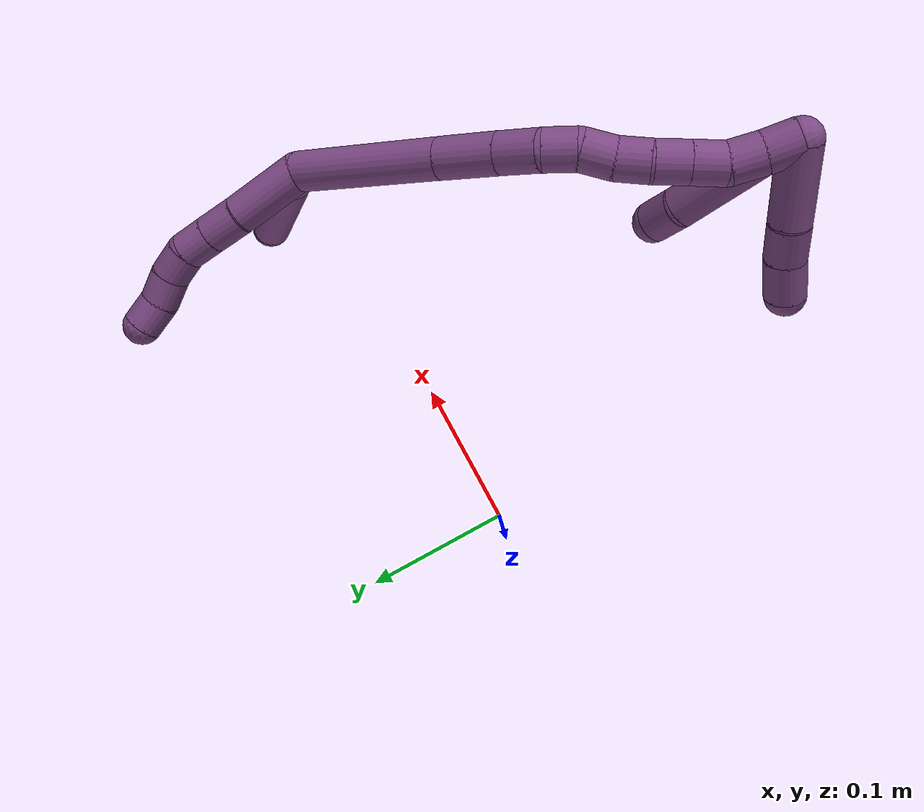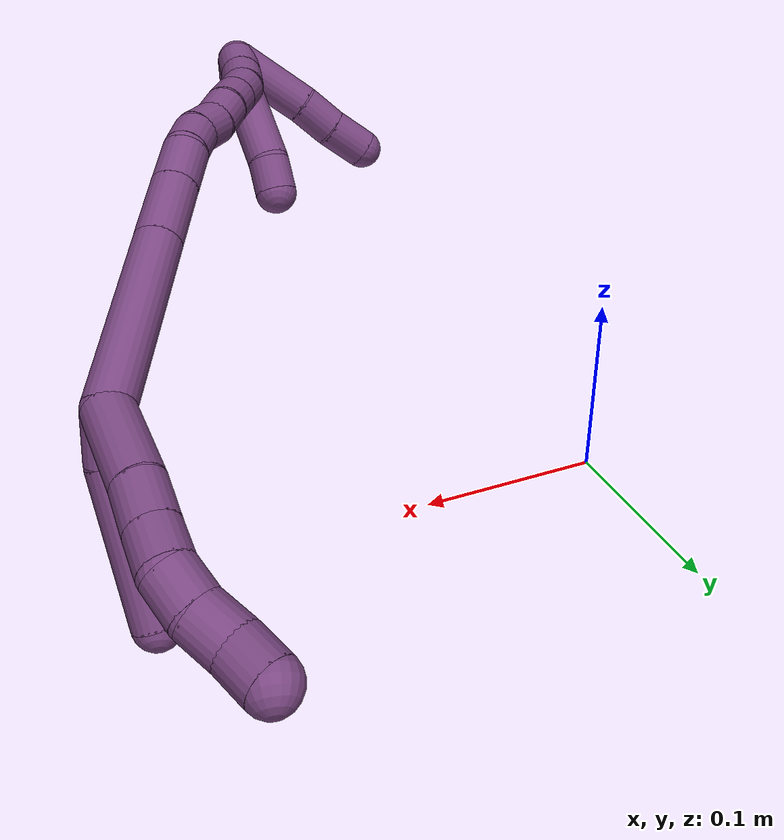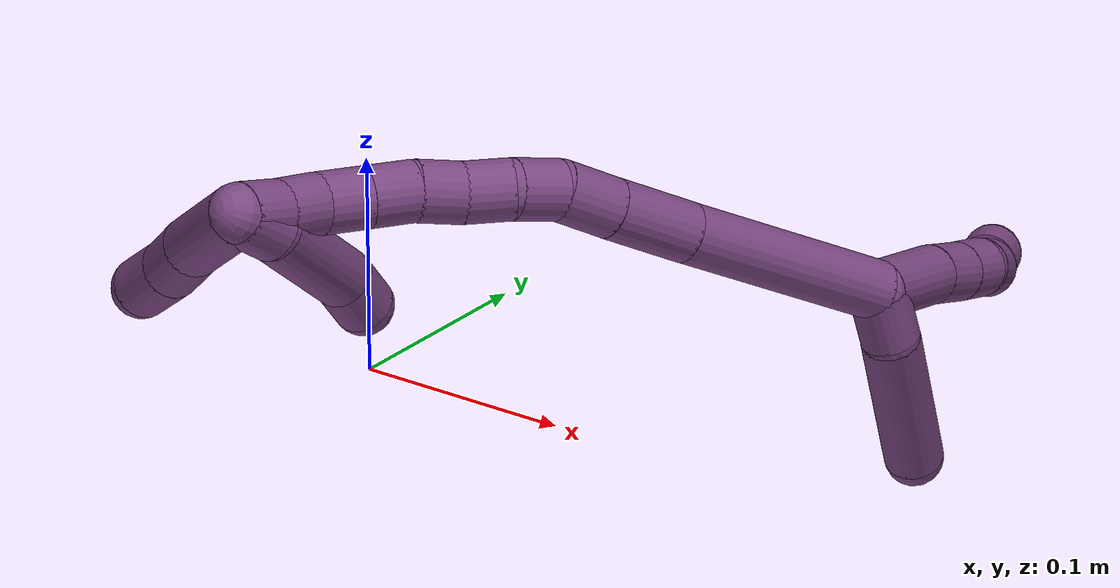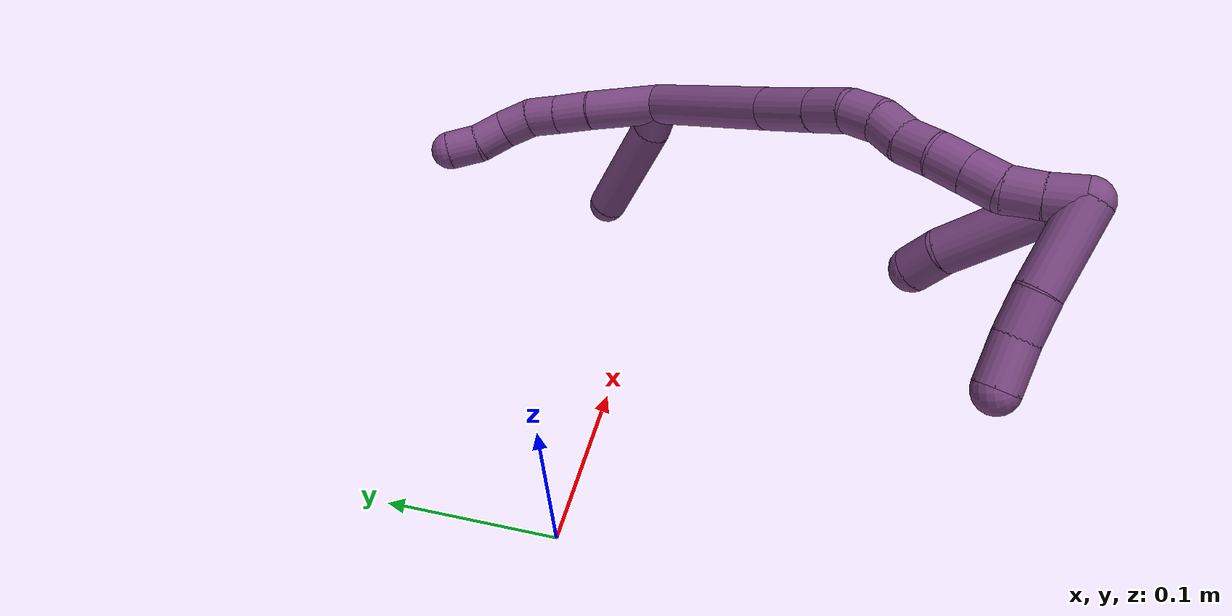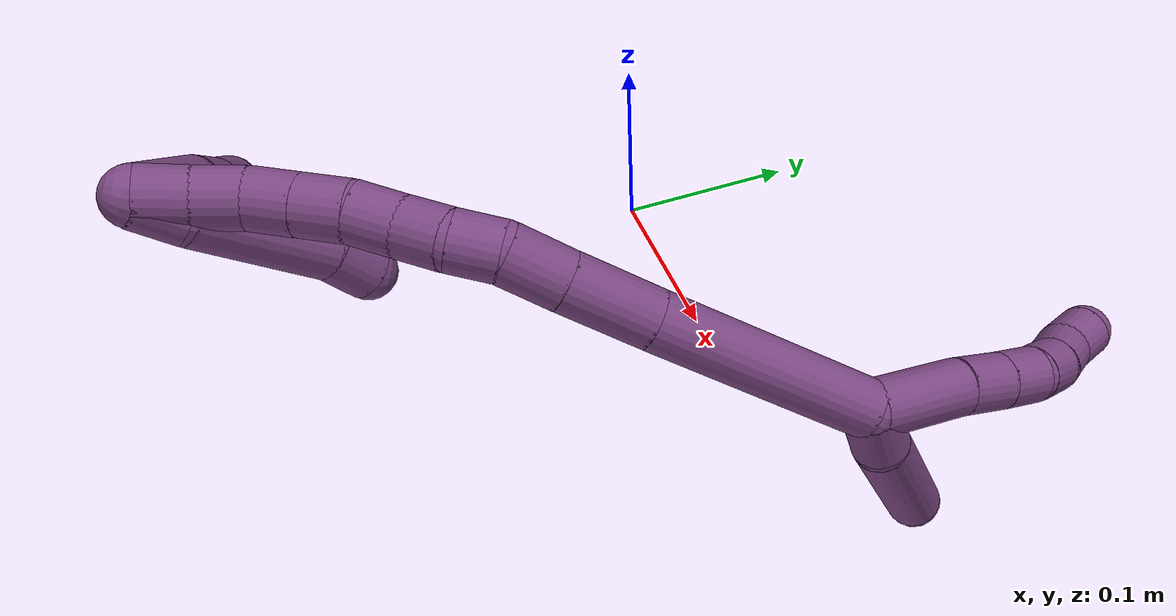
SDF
<sdf version="1.7">
 <world name="default">
  <model name="20">
   <static>0</static>
   <link name="20">
    <collision name="collision-cylinder-e_1_2_8">
     <pose>0.006618 -0.00494 0.02174 0.223454 0.288561 0.032599</pose>
     <geometry><cylinder><radius>0.0125</radius><length>0.046512</length></cylinder></geometry>
     <surface>
      <friction><ode><mu>1.16</mu><mu2>1.16</mu2><slip1>0</slip1><slip2>0</slip2></ode></friction>
      <contact><ode><kp>1e+06</kp><kd>1</kd><max_vel>0</max_vel><min_depth>0.001</min_depth></ode></contact>
     </surface>
    </collision>
    <visual name="visual-cylinder-e_1_2_8">
     <pose>0.006618 -0.00494 0.02174 0.223454 0.288561 0.032599</pose>
     <geometry><cylinder><radius>0.0125</radius><length>0.046512</length></cylinder></geometry>
     <material><ambient>0.478431 0.278431 0.509804 1</ambient></material>
    </visual>
    <collision name="collision-cylinder-e_2_8_9">
     <pose>0.015616 -0.012 0.054682 0.186952 0.205811 0.019362</pose>
     <geometry><cylinder><radius>0.0125</radius><length>0.023293</length></cylinder></geometry>
     <surface>
      <friction><ode><mu>1.16</mu><mu2>1.16</mu2><slip1>0</slip1><slip2>0</slip2></ode></friction>
      <contact><ode><kp>1e+06</kp><kd>1</kd><max_vel>0</max_vel><min_depth>0.001</min_depth></ode></contact>
     </surface>
    </collision>
    <visual name="visual-cylinder-e_2_8_9">
     <pose>0.015616 -0.012 0.054682 0.186952 0.205811 0.019362</pose>
     <geometry><cylinder><radius>0.0125</radius><length>0.023293</length></cylinder></geometry>
     <material><ambient>0.478431 0.278431 0.509804 1</ambient></material>
    </visual>
    <collision name="collision-cylinder-e_3_9_10">
     <pose>0.020416 -0.016051 0.075468 0.198965 0.242624 0.024335</pose>
     <geometry><cylinder><radius>0.0125</radius><length>0.020144</length></cylinder></geometry>
     <surface>
      <friction><ode><mu>1.16</mu><mu2>1.16</mu2><slip1>0</slip1><slip2>0</slip2></ode></friction>
      <contact><ode><kp>1e+06</kp><kd>1</kd><max_vel>0</max_vel><min_depth>0.001</min_depth></ode></contact>
     </surface>
    </collision>
    <visual name="visual-cylinder-e_3_9_10">
     <pose>0.020416 -0.016051 0.075468 0.198965 0.242624 0.024335</pose>
     <geometry><cylinder><radius>0.0125</radius><length>0.020144</length></cylinder></geometry>
     <material><ambient>0.478431 0.278431 0.509804 1</ambient></material>
    </visual>
    <collision name="collision-cylinder-e_4_10_11">
     <pose>0.024064 -0.022791 0.093757 0.504602 0.122862 0.03171</pose>
     <geometry><cylinder><radius>0.0125</radius><length>0.020039</length></cylinder></geometry>
     <surface>
      <friction><ode><mu>1.16</mu><mu2>1.16</mu2><slip1>0</slip1><slip2>0</slip2></ode></friction>
      <contact><ode><kp>1e+06</kp><kd>1</kd><max_vel>0</max_vel><min_depth>0.001</min_depth></ode></contact>
     </surface>
    </collision>
    <visual name="visual-cylinder-e_4_10_11">
     <pose>0.024064 -0.022791 0.093757 0.504602 0.122862 0.03171</pose>
     <geometry><cylinder><radius>0.0125</radius><length>0.020039</length></cylinder></geometry>
     <material><ambient>0.478431 0.278431 0.509804 1</ambient></material>
    </visual>
    <collision name="collision-cylinder-e_5_11_12">
     <pose>0.027016 -0.034128 0.109843 0.72424 0.173205 0.065755</pose>
     <geometry><cylinder><radius>0.0125</radius><length>0.020008</length></cylinder></geometry>
     <surface>
      <friction><ode><mu>1.16</mu><mu2>1.16</mu2><slip1>0</slip1><slip2>0</slip2></ode></friction>
      <contact><ode><kp>1e+06</kp><kd>1</kd><max_vel>0</max_vel><min_depth>0.001</min_depth></ode></contact>
     </surface>
    </collision>
    <visual name="visual-cylinder-e_5_11_12">
     <pose>0.027016 -0.034128 0.109843 0.72424 0.173205 0.065755</pose>
     <geometry><cylinder><radius>0.0125</radius><length>0.020008</length></cylinder></geometry>
     <material><ambient>0.478431 0.278431 0.509804 1</ambient></material>
    </visual>
    <collision name="collision-cylinder-e_6_12_6">
     <pose>0.032245 -0.045511 0.125236 0.544658 0.358095 0.101001</pose>
     <geometry><cylinder><radius>0.0125</radius><length>0.020004</length></cylinder></geometry>
     <surface>
      <friction><ode><mu>1.16</mu><mu2>1.16</mu2><slip1>0</slip1><slip2>0</slip2></ode></friction>
      <contact><ode><kp>1e+06</kp><kd>1</kd><max_vel>0</max_vel><min_depth>0.001</min_depth></ode></contact>
     </surface>
    </collision>
    <visual name="visual-cylinder-e_6_12_6">
     <pose>0.032245 -0.045511 0.125236 0.544658 0.358095 0.101001</pose>
     <geometry><cylinder><radius>0.0125</radius><length>0.020004</length></cylinder></geometry>
     <material><ambient>0.478431 0.278431 0.509804 1</ambient></material>
    </visual>
    <collision name="collision-cylinder-e_1_2_13">
     <pose>-0.008545 -0.002036 0.00829 0.240806 -0.785909 -0.100219</pose>
     <geometry><cylinder><radius>0.0125</radius><length>0.024157</length></cylinder></geometry>
     <surface>
      <friction><ode><mu>1.16</mu><mu2>1.16</mu2><slip1>0</slip1><slip2>0</slip2></ode></friction>
      <contact><ode><kp>1e+06</kp><kd>1</kd><max_vel>0</max_vel><min_depth>0.001</min_depth></ode></contact>
     </surface>
    </collision>
    <visual name="visual-cylinder-e_1_2_13">
     <pose>-0.008545 -0.002036 0.00829 0.240806 -0.785909 -0.100219</pose>
     <geometry><cylinder><radius>0.0125</radius><length>0.024157</length></cylinder></geometry>
     <material><ambient>0.478431 0.278431 0.509804 1</ambient></material>
    </visual>
    <collision name="collision-cylinder-e_2_13_5">
     <pose>-0.038344 -0.017205 0.045108 0.431439 -0.594957 -0.134158</pose>
     <geometry><cylinder><radius>0.0125</radius><length>0.075843</length></cylinder></geometry>
     <surface>
      <friction><ode><mu>1.16</mu><mu2>1.16</mu2><slip1>0</slip1><slip2>0</slip2></ode></friction>
      <contact><ode><kp>1e+06</kp><kd>1</kd><max_vel>0</max_vel><min_depth>0.001</min_depth></ode></contact>
     </surface>
    </collision>
    <visual name="visual-cylinder-e_2_13_5">
     <pose>-0.038344 -0.017205 0.045108 0.431439 -0.594957 -0.134158</pose>
     <geometry><cylinder><radius>0.0125</radius><length>0.075843</length></cylinder></geometry>
     <material><ambient>0.478431 0.278431 0.509804 1</ambient></material>
    </visual>
    <collision name="collision-cylinder-e_1_2_14">
     <pose>0.003759 -0.011884 -0.046893 2.89339 0.07754 0.602969</pose>
     <geometry><cylinder><radius>0.0125</radius><length>0.097042</length></cylinder></geometry>
     <surface>
      <friction><ode><mu>1.16</mu><mu2>1.16</mu2><slip1>0</slip1><slip2>0</slip2></ode></friction>
      <contact><ode><kp>1e+06</kp><kd>1</kd><max_vel>0</max_vel><min_depth>0.001</min_depth></ode></contact>
     </surface>
    </collision>
    <visual name="visual-cylinder-e_1_2_14">
     <pose>0.003759 -0.011884 -0.046893 2.89339 0.07754 0.602969</pose>
     <geometry><cylinder><radius>0.0125</radius><length>0.097042</length></cylinder></geometry>
     <material><ambient>0.478431 0.278431 0.509804 1</ambient></material>
    </visual>
    <collision name="collision-cylinder-e_2_14_15">
     <pose>0.009253 -0.028392 -0.111833 2.89076 0.092912 0.706535</pose>
     <geometry><cylinder><radius>0.0125</radius><length>0.037422</length></cylinder></geometry>
     <surface>
      <friction><ode><mu>1.16</mu><mu2>1.16</mu2><slip1>0</slip1><slip2>0</slip2></ode></friction>
      <contact><ode><kp>1e+06</kp><kd>1</kd><max_vel>0</max_vel><min_depth>0.001</min_depth></ode></contact>
     </surface>
    </collision>
    <visual name="visual-cylinder-e_2_14_15">
     <pose>0.009253 -0.028392 -0.111833 2.89076 0.092912 0.706535</pose>
     <geometry><cylinder><radius>0.0125</radius><length>0.037422</length></cylinder></geometry>
     <material><ambient>0.478431 0.278431 0.509804 1</ambient></material>
    </visual>
    <collision name="collision-cylinder-e_3_15_16">
     <pose>0.012438 -0.036253 -0.142067 2.88193 0.114396 0.826592</pose>
     <geometry><cylinder><radius>0.0125</radius><length>0.025386</length></cylinder></geometry>
     <surface>
      <friction><ode><mu>1.16</mu><mu2>1.16</mu2><slip1>0</slip1><slip2>0</slip2></ode></friction>
      <contact><ode><kp>1e+06</kp><kd>1</kd><max_vel>0</max_vel><min_depth>0.001</min_depth></ode></contact>
     </surface>
    </collision>
    <visual name="visual-cylinder-e_3_15_16">
     <pose>0.012438 -0.036253 -0.142067 2.88193 0.114396 0.826592</pose>
     <geometry><cylinder><radius>0.0125</radius><length>0.025386</length></cylinder></geometry>
     <material><ambient>0.478431 0.278431 0.509804 1</ambient></material>
    </visual>
    <collision name="collision-cylinder-e_4_16_17">
     <pose>0.012282 -0.042981 -0.163561 2.78281 -0.160063 -0.832828</pose>
     <geometry><cylinder><radius>0.0125</radius><length>0.020137</length></cylinder></geometry>
     <surface>
      <friction><ode><mu>1.16</mu><mu2>1.16</mu2><slip1>0</slip1><slip2>0</slip2></ode></friction>
      <contact><ode><kp>1e+06</kp><kd>1</kd><max_vel>0</max_vel><min_depth>0.001</min_depth></ode></contact>
     </surface>
    </collision>
    <visual name="visual-cylinder-e_4_16_17">
     <pose>0.012282 -0.042981 -0.163561 2.78281 -0.160063 -0.832828</pose>
     <geometry><cylinder><radius>0.0125</radius><length>0.020137</length></cylinder></geometry>
     <material><ambient>0.478431 0.278431 0.509804 1</ambient></material>
    </visual>
    <collision name="collision-cylinder-e_5_17_18">
     <pose>0.008484 -0.052507 -0.18054 2.475 -0.221028 -0.620343</pose>
     <geometry><cylinder><radius>0.0125</radius><length>0.02001</length></cylinder></geometry>
     <surface>
      <friction><ode><mu>1.16</mu><mu2>1.16</mu2><slip1>0</slip1><slip2>0</slip2></ode></friction>
      <contact><ode><kp>1e+06</kp><kd>1</kd><max_vel>0</max_vel><min_depth>0.001</min_depth></ode></contact>
     </surface>
    </collision>
    <visual name="visual-cylinder-e_5_17_18">
     <pose>0.008484 -0.052507 -0.18054 2.475 -0.221028 -0.620343</pose>
     <geometry><cylinder><radius>0.0125</radius><length>0.02001</length></cylinder></geometry>
     <material><ambient>0.478431 0.278431 0.509804 1</ambient></material>
    </visual>
    <collision name="collision-cylinder-e_6_18_19">
     <pose>0.005039 -0.062924 -0.197114 2.68423 -0.125458 -0.527172</pose>
     <geometry><cylinder><radius>0.0125</radius><length>0.020001</length></cylinder></geometry>
     <surface>
      <friction><ode><mu>1.16</mu><mu2>1.16</mu2><slip1>0</slip1><slip2>0</slip2></ode></friction>
      <contact><ode><kp>1e+06</kp><kd>1</kd><max_vel>0</max_vel><min_depth>0.001</min_depth></ode></contact>
     </surface>
    </collision>
    <visual name="visual-cylinder-e_6_18_19">
     <pose>0.005039 -0.062924 -0.197114 2.68423 -0.125458 -0.527172</pose>
     <geometry><cylinder><radius>0.0125</radius><length>0.020001</length></cylinder></geometry>
     <material><ambient>0.478431 0.278431 0.509804 1</ambient></material>
    </visual>
    <collision name="collision-cylinder-e_7_19_20">
     <pose>0.000909 -0.071404 -0.214672 2.69936 -0.291994 -1.15856</pose>
     <geometry><cylinder><radius>0.0125</radius><length>0.020001</length></cylinder></geometry>
     <surface>
      <friction><ode><mu>1.16</mu><mu2>1.16</mu2><slip1>0</slip1><slip2>0</slip2></ode></friction>
      <contact><ode><kp>1e+06</kp><kd>1</kd><max_vel>0</max_vel><min_depth>0.001</min_depth></ode></contact>
     </surface>
    </collision>
    <visual name="visual-cylinder-e_7_19_20">
     <pose>0.000909 -0.071404 -0.214672 2.69936 -0.291994 -1.15856</pose>
     <geometry><cylinder><radius>0.0125</radius><length>0.020001</length></cylinder></geometry>
     <material><ambient>0.478431 0.278431 0.509804 1</ambient></material>
    </visual>
    <collision name="collision-cylinder-e_8_20_21">
     <pose>-0.004828 -0.079648 -0.231968 2.69423 -0.289841 -1.14081</pose>
     <geometry><cylinder><radius>0.0125</radius><length>0.02</length></cylinder></geometry>
     <surface>
      <friction><ode><mu>1.16</mu><mu2>1.16</mu2><slip1>0</slip1><slip2>0</slip2></ode></friction>
      <contact><ode><kp>1e+06</kp><kd>1</kd><max_vel>0</max_vel><min_depth>0.001</min_depth></ode></contact>
     </surface>
    </collision>
    <visual name="visual-cylinder-e_8_20_21">
     <pose>-0.004828 -0.079648 -0.231968 2.69423 -0.289841 -1.14081</pose>
     <geometry><cylinder><radius>0.0125</radius><length>0.02</length></cylinder></geometry>
     <material><ambient>0.478431 0.278431 0.509804 1</ambient></material>
    </visual>
    <collision name="collision-cylinder-e_9_21_22">
     <pose>-0.010704 -0.084808 -0.250088 3.035 -0.306553 -2.47661</pose>
     <geometry><cylinder><radius>0.0125</radius><length>0.020001</length></cylinder></geometry>
     <surface>
      <friction><ode><mu>1.16</mu><mu2>1.16</mu2><slip1>0</slip1><slip2>0</slip2></ode></friction>
      <contact><ode><kp>1e+06</kp><kd>1</kd><max_vel>0</max_vel><min_depth>0.001</min_depth></ode></contact>
     </surface>
    </collision>
    <visual name="visual-cylinder-e_9_21_22">
     <pose>-0.010704 -0.084808 -0.250088 3.035 -0.306553 -2.47661</pose>
     <geometry><cylinder><radius>0.0125</radius><length>0.020001</length></cylinder></geometry>
     <material><ambient>0.478431 0.278431 0.509804 1</ambient></material>
    </visual>
    <collision name="collision-cylinder-e_10_22_1">
     <pose>-0.016016 -0.085993 -0.2693 3.12408 -0.231468 -2.99123</pose>
     <geometry><cylinder><radius>0.0125</radius><length>0.02</length></cylinder></geometry>
     <surface>
      <friction><ode><mu>1.16</mu><mu2>1.16</mu2><slip1>0</slip1><slip2>0</slip2></ode></friction>
      <contact><ode><kp>1e+06</kp><kd>1</kd><max_vel>0</max_vel><min_depth>0.001</min_depth></ode></contact>
     </surface>
    </collision>
    <visual name="visual-cylinder-e_10_22_1">
     <pose>-0.016016 -0.085993 -0.2693 3.12408 -0.231468 -2.99123</pose>
     <geometry><cylinder><radius>0.0125</radius><length>0.02</length></cylinder></geometry>
     <material><ambient>0.478431 0.278431 0.509804 1</ambient></material>
    </visual>
    <collision name="collision-cylinder-e_1_1_23">
     <pose>-0.023535 -0.10832 -0.268732 1.13561 -0.210689 -0.134689</pose>
     <geometry><cylinder><radius>0.0125</radius><length>0.049972</length></cylinder></geometry>
     <surface>
      <friction><ode><mu>1.16</mu><mu2>1.16</mu2><slip1>0</slip1><slip2>0</slip2></ode></friction>
      <contact><ode><kp>1e+06</kp><kd>1</kd><max_vel>0</max_vel><min_depth>0.001</min_depth></ode></contact>
     </surface>
    </collision>
    <visual name="visual-cylinder-e_1_1_23">
     <pose>-0.023535 -0.10832 -0.268732 1.13561 -0.210689 -0.134689</pose>
     <geometry><cylinder><radius>0.0125</radius><length>0.049972</length></cylinder></geometry>
     <material><ambient>0.478431 0.278431 0.509804 1</ambient></material>
    </visual>
    <collision name="collision-cylinder-e_2_23_24">
     <pose>-0.032598 -0.140764 -0.253652 1.13591 -0.326197 -0.20924</pose>
     <geometry><cylinder><radius>0.0125</radius><length>0.023951</length></cylinder></geometry>
     <surface>
      <friction><ode><mu>1.16</mu><mu2>1.16</mu2><slip1>0</slip1><slip2>0</slip2></ode></friction>
      <contact><ode><kp>1e+06</kp><kd>1</kd><max_vel>0</max_vel><min_depth>0.001</min_depth></ode></contact>
     </surface>
    </collision>
    <visual name="visual-cylinder-e_2_23_24">
     <pose>-0.032598 -0.140764 -0.253652 1.13591 -0.326197 -0.20924</pose>
     <geometry><cylinder><radius>0.0125</radius><length>0.023951</length></cylinder></geometry>
     <material><ambient>0.478431 0.278431 0.509804 1</ambient></material>
    </visual>
    <collision name="collision-cylinder-e_3_24_4">
     <pose>-0.040101 -0.162907 -0.244869 1.2451 -0.284945 -0.205197</pose>
     <geometry><cylinder><radius>0.0125</radius><length>0.026077</length></cylinder></geometry>
     <surface>
      <friction><ode><mu>1.16</mu><mu2>1.16</mu2><slip1>0</slip1><slip2>0</slip2></ode></friction>
      <contact><ode><kp>1e+06</kp><kd>1</kd><max_vel>0</max_vel><min_depth>0.001</min_depth></ode></contact>
     </surface>
    </collision>
    <visual name="visual-cylinder-e_3_24_4">
     <pose>-0.040101 -0.162907 -0.244869 1.2451 -0.284945 -0.205197</pose>
     <geometry><cylinder><radius>0.0125</radius><length>0.026077</length></cylinder></geometry>
     <material><ambient>0.478431 0.278431 0.509804 1</ambient></material>
    </visual>
    <collision name="collision-cylinder-e_1_1_25">
     <pose>-0.019826 -0.086541 -0.268978 0.03752 -0.14957 -0.002811</pose>
     <geometry><cylinder><radius>0.0125</radius><length>0.02035</length></cylinder></geometry>
     <surface>
      <friction><ode><mu>1.16</mu><mu2>1.16</mu2><slip1>0</slip1><slip2>0</slip2></ode></friction>
      <contact><ode><kp>1e+06</kp><kd>1</kd><max_vel>0</max_vel><min_depth>0.001</min_depth></ode></contact>
     </surface>
    </collision>
    <visual name="visual-cylinder-e_1_1_25">
     <pose>-0.019826 -0.086541 -0.268978 0.03752 -0.14957 -0.002811</pose>
     <geometry><cylinder><radius>0.0125</radius><length>0.02035</length></cylinder></geometry>
     <material><ambient>0.478431 0.278431 0.509804 1</ambient></material>
    </visual>
    <collision name="collision-cylinder-e_2_25_26">
     <pose>-0.026271 -0.094696 -0.230991 0.271558 -0.16839 -0.023059</pose>
     <geometry><cylinder><radius>0.0125</radius><length>0.058822</length></cylinder></geometry>
     <surface>
      <friction><ode><mu>1.16</mu><mu2>1.16</mu2><slip1>0</slip1><slip2>0</slip2></ode></friction>
      <contact><ode><kp>1e+06</kp><kd>1</kd><max_vel>0</max_vel><min_depth>0.001</min_depth></ode></contact>
     </surface>
    </collision>
    <visual name="visual-cylinder-e_2_25_26">
     <pose>-0.026271 -0.094696 -0.230991 0.271558 -0.16839 -0.023059</pose>
     <geometry><cylinder><radius>0.0125</radius><length>0.058822</length></cylinder></geometry>
     <material><ambient>0.478431 0.278431 0.509804 1</ambient></material>
    </visual>
    <collision name="collision-cylinder-e_3_26_3">
     <pose>-0.035128 -0.104941 -0.193735 0.25882 -0.386667 -0.050945</pose>
     <geometry><cylinder><radius>0.0125</radius><length>0.020828</length></cylinder></geometry>
     <surface>
      <friction><ode><mu>1.16</mu><mu2>1.16</mu2><slip1>0</slip1><slip2>0</slip2></ode></friction>
      <contact><ode><kp>1e+06</kp><kd>1</kd><max_vel>0</max_vel><min_depth>0.001</min_depth></ode></contact>
     </surface>
    </collision>
    <visual name="visual-cylinder-e_3_26_3">
     <pose>-0.035128 -0.104941 -0.193735 0.25882 -0.386667 -0.050945</pose>
     <geometry><cylinder><radius>0.0125</radius><length>0.020828</length></cylinder></geometry>
     <material><ambient>0.478431 0.278431 0.509804 1</ambient></material>
    </visual>
    <collision name="collision-sphere-3">
     <pose>-0.039055 -0.10741 -0.184411 0 -0 0</pose>
     <geometry><sphere><radius>0.0125</radius></sphere></geometry>
     <surface>
      <friction><ode><mu>1.16</mu><mu2>1.16</mu2><slip1>0</slip1><slip2>0</slip2></ode></friction>
      <contact><ode><kp>1e+06</kp><kd>1</kd><max_vel>0</max_vel><min_depth>0.001</min_depth></ode></contact>
     </surface>
    </collision>
    <visual name="visual-sphere-3">
     <pose>-0.039055 -0.10741 -0.184411 0 -0 0</pose>
     <geometry><sphere><radius>0.0125</radius></sphere></geometry>
     <material><ambient>0.478431 0.278431 0.509804 1</ambient></material>
    </visual>
    <collision name="collision-sphere-26">
     <pose>-0.031201 -0.102473 -0.203058 0 -0 0</pose>
     <geometry><sphere><radius>0.0125</radius></sphere></geometry>
     <surface>
      <friction><ode><mu>1.16</mu><mu2>1.16</mu2><slip1>0</slip1><slip2>0</slip2></ode></friction>
      <contact><ode><kp>1e+06</kp><kd>1</kd><max_vel>0</max_vel><min_depth>0.001</min_depth></ode></contact>
     </surface>
    </collision>
    <visual name="visual-sphere-26">
     <pose>-0.031201 -0.102473 -0.203058 0 -0 0</pose>
     <geometry><sphere><radius>0.0125</radius></sphere></geometry>
     <material><ambient>0.478431 0.278431 0.509804 1</ambient></material>
    </visual>
    <collision name="collision-sphere-25">
     <pose>-0.021342 -0.086918 -0.258923 0 -0 0</pose>
     <geometry><sphere><radius>0.0125</radius></sphere></geometry>
     <surface>
      <friction><ode><mu>1.16</mu><mu2>1.16</mu2><slip1>0</slip1><slip2>0</slip2></ode></friction>
      <contact><ode><kp>1e+06</kp><kd>1</kd><max_vel>0</max_vel><min_depth>0.001</min_depth></ode></contact>
     </surface>
    </collision>
    <visual name="visual-sphere-25">
     <pose>-0.021342 -0.086918 -0.258923 0 -0 0</pose>
     <geometry><sphere><radius>0.0125</radius></sphere></geometry>
     <material><ambient>0.478431 0.278431 0.509804 1</ambient></material>
    </visual>
    <collision name="collision-sphere-4">
     <pose>-0.043766 -0.174761 -0.240865 0 -0 0</pose>
     <geometry><sphere><radius>0.0125</radius></sphere></geometry>
     <surface>
      <friction><ode><mu>1.16</mu><mu2>1.16</mu2><slip1>0</slip1><slip2>0</slip2></ode></friction>
      <contact><ode><kp>1e+06</kp><kd>1</kd><max_vel>0</max_vel><min_depth>0.001</min_depth></ode></contact>
     </surface>
    </collision>
    <visual name="visual-sphere-4">
     <pose>-0.043766 -0.174761 -0.240865 0 -0 0</pose>
     <geometry><sphere><radius>0.0125</radius></sphere></geometry>
     <material><ambient>0.478431 0.278431 0.509804 1</ambient></material>
    </visual>
    <collision name="collision-sphere-24">
     <pose>-0.036436 -0.151052 -0.248872 0 -0 0</pose>
     <geometry><sphere><radius>0.0125</radius></sphere></geometry>
     <surface>
      <friction><ode><mu>1.16</mu><mu2>1.16</mu2><slip1>0</slip1><slip2>0</slip2></ode></friction>
      <contact><ode><kp>1e+06</kp><kd>1</kd><max_vel>0</max_vel><min_depth>0.001</min_depth></ode></contact>
     </surface>
    </collision>
    <visual name="visual-sphere-24">
     <pose>-0.036436 -0.151052 -0.248872 0 -0 0</pose>
     <geometry><sphere><radius>0.0125</radius></sphere></geometry>
     <material><ambient>0.478431 0.278431 0.509804 1</ambient></material>
    </visual>
    <collision name="collision-sphere-23">
     <pose>-0.028761 -0.130476 -0.258431 0 -0 0</pose>
     <geometry><sphere><radius>0.0125</radius></sphere></geometry>
     <surface>
      <friction><ode><mu>1.16</mu><mu2>1.16</mu2><slip1>0</slip1><slip2>0</slip2></ode></friction>
      <contact><ode><kp>1e+06</kp><kd>1</kd><max_vel>0</max_vel><min_depth>0.001</min_depth></ode></contact>
     </surface>
    </collision>
    <visual name="visual-sphere-23">
     <pose>-0.028761 -0.130476 -0.258431 0 -0 0</pose>
     <geometry><sphere><radius>0.0125</radius></sphere></geometry>
     <material><ambient>0.478431 0.278431 0.509804 1</ambient></material>
    </visual>
    <collision name="collision-sphere-1">
     <pose>-0.01831 -0.086163 -0.279032 0 -0 0</pose>
     <geometry><sphere><radius>0.0125</radius></sphere></geometry>
     <surface>
      <friction><ode><mu>1.16</mu><mu2>1.16</mu2><slip1>0</slip1><slip2>0</slip2></ode></friction>
      <contact><ode><kp>1e+06</kp><kd>1</kd><max_vel>0</max_vel><min_depth>0.001</min_depth></ode></contact>
     </surface>
    </collision>
    <visual name="visual-sphere-1">
     <pose>-0.01831 -0.086163 -0.279032 0 -0 0</pose>
     <geometry><sphere><radius>0.0125</radius></sphere></geometry>
     <material><ambient>0.478431 0.278431 0.509804 1</ambient></material>
    </visual>
    <collision name="collision-sphere-22">
     <pose>-0.013722 -0.085822 -0.259568 0 -0 0</pose>
     <geometry><sphere><radius>0.0125</radius></sphere></geometry>
     <surface>
      <friction><ode><mu>1.16</mu><mu2>1.16</mu2><slip1>0</slip1><slip2>0</slip2></ode></friction>
      <contact><ode><kp>1e+06</kp><kd>1</kd><max_vel>0</max_vel><min_depth>0.001</min_depth></ode></contact>
     </surface>
    </collision>
    <visual name="visual-sphere-22">
     <pose>-0.013722 -0.085822 -0.259568 0 -0 0</pose>
     <geometry><sphere><radius>0.0125</radius></sphere></geometry>
     <material><ambient>0.478431 0.278431 0.509804 1</ambient></material>
    </visual>
    <collision name="collision-sphere-21">
     <pose>-0.007686 -0.083794 -0.240608 0 -0 0</pose>
     <geometry><sphere><radius>0.0125</radius></sphere></geometry>
     <surface>
      <friction><ode><mu>1.16</mu><mu2>1.16</mu2><slip1>0</slip1><slip2>0</slip2></ode></friction>
      <contact><ode><kp>1e+06</kp><kd>1</kd><max_vel>0</max_vel><min_depth>0.001</min_depth></ode></contact>
     </surface>
    </collision>
    <visual name="visual-sphere-21">
     <pose>-0.007686 -0.083794 -0.240608 0 -0 0</pose>
     <geometry><sphere><radius>0.0125</radius></sphere></geometry>
     <material><ambient>0.478431 0.278431 0.509804 1</ambient></material>
    </visual>
    <collision name="collision-sphere-12">
     <pose>0.02874 -0.040657 0.117224 0 -0 0</pose>
     <geometry><sphere><radius>0.0125</radius></sphere></geometry>
     <surface>
      <friction><ode><mu>1.16</mu><mu2>1.16</mu2><slip1>0</slip1><slip2>0</slip2></ode></friction>
      <contact><ode><kp>1e+06</kp><kd>1</kd><max_vel>0</max_vel><min_depth>0.001</min_depth></ode></contact>
     </surface>
    </collision>
    <visual name="visual-sphere-12">
     <pose>0.02874 -0.040657 0.117224 0 -0 0</pose>
     <geometry><sphere><radius>0.0125</radius></sphere></geometry>
     <material><ambient>0.478431 0.278431 0.509804 1</ambient></material>
    </visual>
    <collision name="collision-sphere-11">
     <pose>0.025292 -0.027599 0.102462 0 -0 0</pose>
     <geometry><sphere><radius>0.0125</radius></sphere></geometry>
     <surface>
      <friction><ode><mu>1.16</mu><mu2>1.16</mu2><slip1>0</slip1><slip2>0</slip2></ode></friction>
      <contact><ode><kp>1e+06</kp><kd>1</kd><max_vel>0</max_vel><min_depth>0.001</min_depth></ode></contact>
     </surface>
    </collision>
    <visual name="visual-sphere-11">
     <pose>0.025292 -0.027599 0.102462 0 -0 0</pose>
     <geometry><sphere><radius>0.0125</radius></sphere></geometry>
     <material><ambient>0.478431 0.278431 0.509804 1</ambient></material>
    </visual>
    <collision name="collision-sphere-10">
     <pose>0.022836 -0.017984 0.085053 0 -0 0</pose>
     <geometry><sphere><radius>0.0125</radius></sphere></geometry>
     <surface>
      <friction><ode><mu>1.16</mu><mu2>1.16</mu2><slip1>0</slip1><slip2>0</slip2></ode></friction>
      <contact><ode><kp>1e+06</kp><kd>1</kd><max_vel>0</max_vel><min_depth>0.001</min_depth></ode></contact>
     </surface>
    </collision>
    <visual name="visual-sphere-10">
     <pose>0.022836 -0.017984 0.085053 0 -0 0</pose>
     <geometry><sphere><radius>0.0125</radius></sphere></geometry>
     <material><ambient>0.478431 0.278431 0.509804 1</ambient></material>
    </visual>
    <collision name="collision-sphere-9">
     <pose>0.017996 -0.014119 0.065884 0 -0 0</pose>
     <geometry><sphere><radius>0.0125</radius></sphere></geometry>
     <surface>
      <friction><ode><mu>1.16</mu><mu2>1.16</mu2><slip1>0</slip1><slip2>0</slip2></ode></friction>
      <contact><ode><kp>1e+06</kp><kd>1</kd><max_vel>0</max_vel><min_depth>0.001</min_depth></ode></contact>
     </surface>
    </collision>
    <visual name="visual-sphere-9">
     <pose>0.017996 -0.014119 0.065884 0 -0 0</pose>
     <geometry><sphere><radius>0.0125</radius></sphere></geometry>
     <material><ambient>0.478431 0.278431 0.509804 1</ambient></material>
    </visual>
    <collision name="collision-sphere-2">
     <geometry><sphere><radius>0.0125</radius></sphere></geometry>
     <surface>
      <friction><ode><mu>1.16</mu><mu2>1.16</mu2><slip1>0</slip1><slip2>0</slip2></ode></friction>
      <contact><ode><kp>1e+06</kp><kd>1</kd><max_vel>0</max_vel><min_depth>0.001</min_depth></ode></contact>
     </surface>
    </collision>
    <visual name="visual-sphere-2">
     <geometry><sphere><radius>0.0125</radius></sphere></geometry>
     <material><ambient>0.478431 0.278431 0.509804 1</ambient></material>
    </visual>
    <collision name="collision-sphere-19">
     <pose>0.003788 -0.067305 -0.206016 0 -0 0</pose>
     <geometry><sphere><radius>0.0125</radius></sphere></geometry>
     <surface>
      <friction><ode><mu>1.16</mu><mu2>1.16</mu2><slip1>0</slip1><slip2>0</slip2></ode></friction>
      <contact><ode><kp>1e+06</kp><kd>1</kd><max_vel>0</max_vel><min_depth>0.001</min_depth></ode></contact>
     </surface>
    </collision>
    <visual name="visual-sphere-19">
     <pose>0.003788 -0.067305 -0.206016 0 -0 0</pose>
     <geometry><sphere><radius>0.0125</radius></sphere></geometry>
     <material><ambient>0.478431 0.278431 0.509804 1</ambient></material>
    </visual>
    <collision name="collision-sphere-8">
     <pose>0.013236 -0.009881 0.04348 0 -0 0</pose>
     <geometry><sphere><radius>0.0125</radius></sphere></geometry>
     <surface>
      <friction><ode><mu>1.16</mu><mu2>1.16</mu2><slip1>0</slip1><slip2>0</slip2></ode></friction>
      <contact><ode><kp>1e+06</kp><kd>1</kd><max_vel>0</max_vel><min_depth>0.001</min_depth></ode></contact>
     </surface>
    </collision>
    <visual name="visual-sphere-8">
     <pose>0.013236 -0.009881 0.04348 0 -0 0</pose>
     <geometry><sphere><radius>0.0125</radius></sphere></geometry>
     <material><ambient>0.478431 0.278431 0.509804 1</ambient></material>
    </visual>
    <collision name="collision-sphere-6">
     <pose>0.035751 -0.050364 0.133248 0 -0 0</pose>
     <geometry><sphere><radius>0.0125</radius></sphere></geometry>
     <surface>
      <friction><ode><mu>1.16</mu><mu2>1.16</mu2><slip1>0</slip1><slip2>0</slip2></ode></friction>
      <contact><ode><kp>1e+06</kp><kd>1</kd><max_vel>0</max_vel><min_depth>0.001</min_depth></ode></contact>
     </surface>
    </collision>
    <visual name="visual-sphere-6">
     <pose>0.035751 -0.050364 0.133248 0 -0 0</pose>
     <geometry><sphere><radius>0.0125</radius></sphere></geometry>
     <material><ambient>0.478431 0.278431 0.509804 1</ambient></material>
    </visual>
    <collision name="collision-sphere-13">
     <pose>-0.017091 -0.004072 0.01658 0 -0 0</pose>
     <geometry><sphere><radius>0.0125</radius></sphere></geometry>
     <surface>
      <friction><ode><mu>1.16</mu><mu2>1.16</mu2><slip1>0</slip1><slip2>0</slip2></ode></friction>
      <contact><ode><kp>1e+06</kp><kd>1</kd><max_vel>0</max_vel><min_depth>0.001</min_depth></ode></contact>
     </surface>
    </collision>
    <visual name="visual-sphere-13">
     <pose>-0.017091 -0.004072 0.01658 0 -0 0</pose>
     <geometry><sphere><radius>0.0125</radius></sphere></geometry>
     <material><ambient>0.478431 0.278431 0.509804 1</ambient></material>
    </visual>
    <collision name="collision-sphere-5">
     <pose>-0.059598 -0.030338 0.073636 0 -0 0</pose>
     <geometry><sphere><radius>0.0125</radius></sphere></geometry>
     <surface>
      <friction><ode><mu>1.16</mu><mu2>1.16</mu2><slip1>0</slip1><slip2>0</slip2></ode></friction>
      <contact><ode><kp>1e+06</kp><kd>1</kd><max_vel>0</max_vel><min_depth>0.001</min_depth></ode></contact>
     </surface>
    </collision>
    <visual name="visual-sphere-5">
     <pose>-0.059598 -0.030338 0.073636 0 -0 0</pose>
     <geometry><sphere><radius>0.0125</radius></sphere></geometry>
     <material><ambient>0.478431 0.278431 0.509804 1</ambient></material>
    </visual>
    <collision name="collision-sphere-14">
     <pose>0.007517 -0.023767 -0.093785 0 -0 0</pose>
     <geometry><sphere><radius>0.0125</radius></sphere></geometry>
     <surface>
      <friction><ode><mu>1.16</mu><mu2>1.16</mu2><slip1>0</slip1><slip2>0</slip2></ode></friction>
      <contact><ode><kp>1e+06</kp><kd>1</kd><max_vel>0</max_vel><min_depth>0.001</min_depth></ode></contact>
     </surface>
    </collision>
    <visual name="visual-sphere-14">
     <pose>0.007517 -0.023767 -0.093785 0 -0 0</pose>
     <geometry><sphere><radius>0.0125</radius></sphere></geometry>
     <material><ambient>0.478431 0.278431 0.509804 1</ambient></material>
    </visual>
    <collision name="collision-sphere-15">
     <pose>0.010989 -0.033016 -0.12988 0 -0 0</pose>
     <geometry><sphere><radius>0.0125</radius></sphere></geometry>
     <surface>
      <friction><ode><mu>1.16</mu><mu2>1.16</mu2><slip1>0</slip1><slip2>0</slip2></ode></friction>
      <contact><ode><kp>1e+06</kp><kd>1</kd><max_vel>0</max_vel><min_depth>0.001</min_depth></ode></contact>
     </surface>
    </collision>
    <visual name="visual-sphere-15">
     <pose>0.010989 -0.033016 -0.12988 0 -0 0</pose>
     <geometry><sphere><radius>0.0125</radius></sphere></geometry>
     <material><ambient>0.478431 0.278431 0.509804 1</ambient></material>
    </visual>
    <collision name="collision-sphere-16">
     <pose>0.013887 -0.039491 -0.154254 0 -0 0</pose>
     <geometry><sphere><radius>0.0125</radius></sphere></geometry>
     <surface>
      <friction><ode><mu>1.16</mu><mu2>1.16</mu2><slip1>0</slip1><slip2>0</slip2></ode></friction>
      <contact><ode><kp>1e+06</kp><kd>1</kd><max_vel>0</max_vel><min_depth>0.001</min_depth></ode></contact>
     </surface>
    </collision>
    <visual name="visual-sphere-16">
     <pose>0.013887 -0.039491 -0.154254 0 -0 0</pose>
     <geometry><sphere><radius>0.0125</radius></sphere></geometry>
     <material><ambient>0.478431 0.278431 0.509804 1</ambient></material>
    </visual>
    <collision name="collision-sphere-17">
     <pose>0.010677 -0.046472 -0.172868 0 -0 0</pose>
     <geometry><sphere><radius>0.0125</radius></sphere></geometry>
     <surface>
      <friction><ode><mu>1.16</mu><mu2>1.16</mu2><slip1>0</slip1><slip2>0</slip2></ode></friction>
      <contact><ode><kp>1e+06</kp><kd>1</kd><max_vel>0</max_vel><min_depth>0.001</min_depth></ode></contact>
     </surface>
    </collision>
    <visual name="visual-sphere-17">
     <pose>0.010677 -0.046472 -0.172868 0 -0 0</pose>
     <geometry><sphere><radius>0.0125</radius></sphere></geometry>
     <material><ambient>0.478431 0.278431 0.509804 1</ambient></material>
    </visual>
    <collision name="collision-sphere-18">
     <pose>0.00629 -0.058543 -0.188212 0 -0 0</pose>
     <geometry><sphere><radius>0.0125</radius></sphere></geometry>
     <surface>
      <friction><ode><mu>1.16</mu><mu2>1.16</mu2><slip1>0</slip1><slip2>0</slip2></ode></friction>
      <contact><ode><kp>1e+06</kp><kd>1</kd><max_vel>0</max_vel><min_depth>0.001</min_depth></ode></contact>
     </surface>
    </collision>
    <visual name="visual-sphere-18">
     <pose>0.00629 -0.058543 -0.188212 0 -0 0</pose>
     <geometry><sphere><radius>0.0125</radius></sphere></geometry>
     <material><ambient>0.478431 0.278431 0.509804 1</ambient></material>
    </visual>
    <collision name="collision-sphere-20">
     <pose>-0.00197 -0.075503 -0.223328 0 -0 0</pose>
     <geometry><sphere><radius>0.0125</radius></sphere></geometry>
     <surface>
      <friction><ode><mu>1.16</mu><mu2>1.16</mu2><slip1>0</slip1><slip2>0</slip2></ode></friction>
      <contact><ode><kp>1e+06</kp><kd>1</kd><max_vel>0</max_vel><min_depth>0.001</min_depth></ode></contact>
     </surface>
    </collision>
    <visual name="visual-sphere-20">
     <pose>-0.00197 -0.075503 -0.223328 0 -0 0</pose>
     <geometry><sphere><radius>0.0125</radius></sphere></geometry>
     <material><ambient>0.478431 0.278431 0.509804 1</ambient></material>
    </visual>
    <inertial>
     <pose>-0.00682 -0.052712 -0.103319 0 -0 0</pose>
     <mass>0.75</mass>
     <inertia><ixx>0.000194</ixx><ixy>0</ixy><ixz>0</ixz><iyy>3.1e-05</iyy><iyz>0</iyz><izz>9.2e-05</izz></inertia>
    </inertial>
   </link>
   <pose>0.258846 0.004407 0.103019 2.64369 -1.04484 1.92388</pose>
  </model>
 </world>
</sdf>
